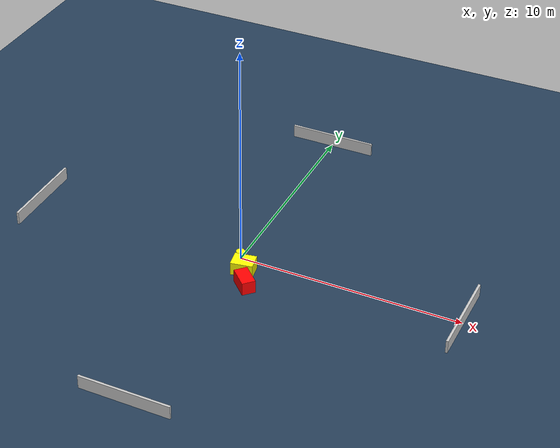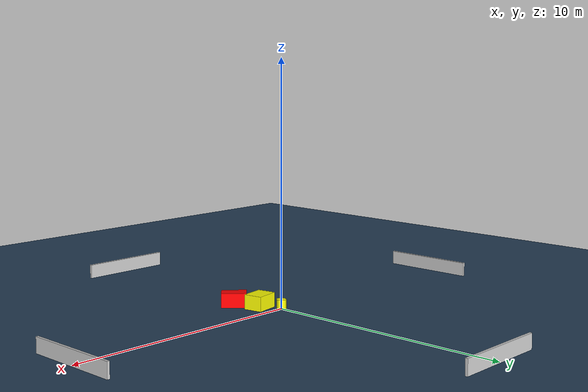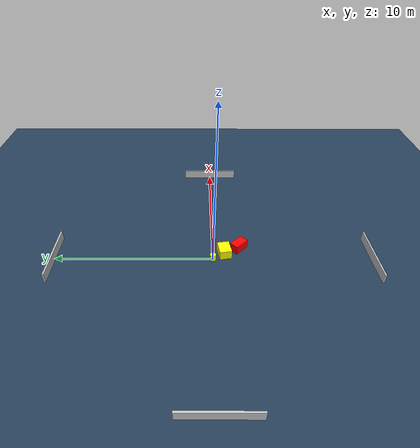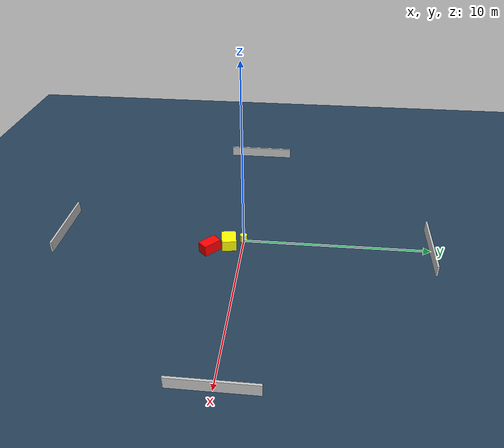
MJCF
<?xml version="1.0" ?>
<mujoco model="generated_environment">
  <option timestep="0.01" integrator="RK4" cone="elliptic"/>
  <default>
    <geom density="1"/>
  </default>
  <asset>
    <texture builtin="gradient" height="3072" name="skybox" rgb1="0.3 0.5 0.7" rgb2="0 0 0" type="skybox" width="512"/>
    <texture builtin="checker" height="300" name="groundplane" rgb1="0.2 0.3 0.4" rgb2="0.1 0.2 0.3" type="2d" width="300"/>
    <material name="groundplane" reflectance="0.2" texrepeat="5 5" texture="groundplane"/>
  </asset>
  <worldbody>
    <light dir="0 0 -1" directional="true" pos="0 0 1.5"/>
    <geom condim="3" friction="0.5 0.005 0.001" material="groundplane" name="floor" pos="0 0 0" size="0 0 0.05" type="plane"/>
    <body name="walls">
      <geom name="wall_1" condim="4" pos="-10.0 0.0 0.3" rgba="0.800000011920929 0.800000011920929 0.800000011920929 1.0" size="0.05 2.0 0.3" type="box"/>
      <geom name="wall_2" condim="4" pos="10.0 0.0 0.3" rgba="0.800000011920929 0.800000011920929 0.800000011920929 1.0" size="0.05 2.0 0.3" type="box"/>
      <geom name="wall_3" condim="4" pos="0.0 -10.0 0.3" rgba="0.800000011920929 0.800000011920929 0.800000011920929 1.0" size="2.0 0.05 0.3" type="box"/>
      <geom name="wall_4" condim="4" pos="0.0 10.0 0.3" rgba="0.800000011920929 0.800000011920929 0.800000011920929 1.0" size="2.0 0.05 0.3" type="box"/>
    </body>
    <body name="robot">
      <joint name="joint_x" type="slide" pos="0 0 0" axis="1 0 0"/>
      <joint name="joint_y" type="slide" pos="0 0 0" axis="0 1 0"/>
      <geom name="robot" type="cylinder" pos="0.0 0.0 0.2" size="0.2 0.2 0.0" mass="5.0" friction="1.0 0.005 0.0001" condim="4" rgba="1.0 1.0 0.0 1.0"/>
    </body>
    <body name="obstacle_1_movable">
      <geom name="obstacle_1_movable" condim="4" pos="0.49770210442962337 -0.7272502692678342 0.3" euler="0 0 99.88836736921891" friction="0.0 0.005 0.001" rgba="1.0 1.0 0.0 1.0" size="0.38309642051509774 0.48905632447324976 0.3" type="box" mass="0.1"/>
      <joint type="free"/>
    </body>
    <body name="obstacle_2_static">
      <geom name="obstacle_2_static" condim="4" pos="1.0070842706699332 -1.683655784320464 0.3" euler="0 0 135.8186837349599" friction="0.0 0.005 0.001" rgba="1.0 0.0 0.0 1.0" size="0.5094807360791461 0.2981413840677495 0.3" type="box"/>
    </body>
  </worldbody>
  <actuator>
    <motor name="actuator_x" joint="joint_x" gear="1" ctrlrange="-1 1"/>
    <motor name="actuator_y" joint="joint_y" gear="1" ctrlrange="-1 1"/>
  </actuator>
</mujoco>
